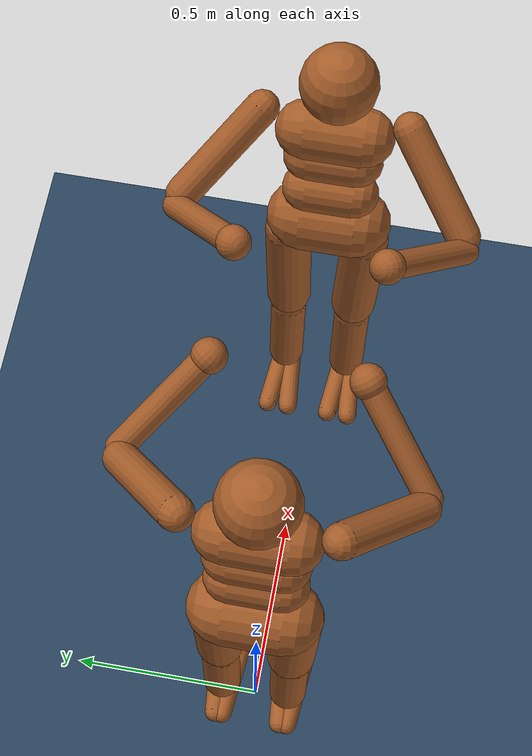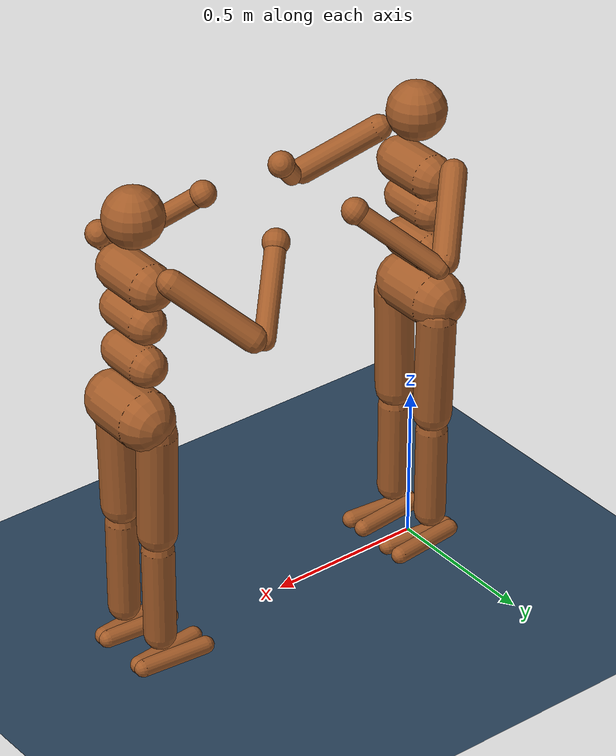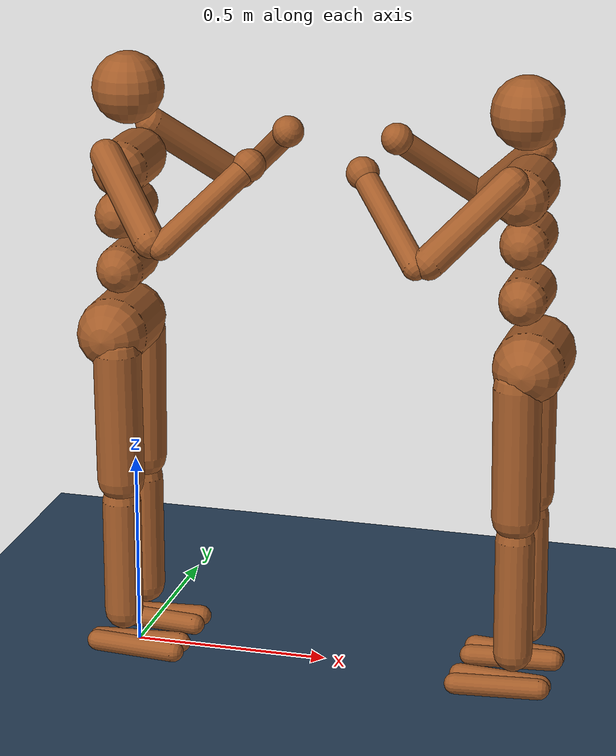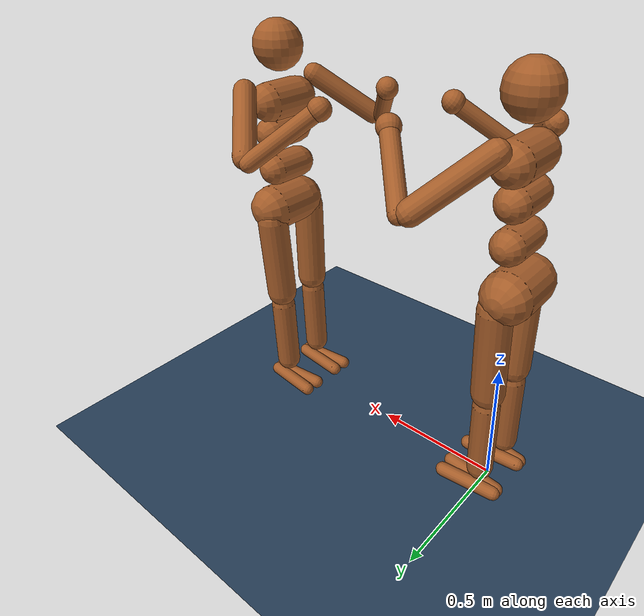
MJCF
<mujoco model="Humanoid">
  <option timestep="0.0050000000000000001"/>
  <visual>
    <global azimuth="120" elevation="-20" offwidth="2560" offheight="1440"/>
    <map force="0.10000000000000001" zfar="30"/>
    <rgba haze="0.14999999999999999 0.25 0.34999999999999998 1"/>
  </visual>
  <statistic center="0 0 0.69999999999999996"/>
  <default>
    <default class="/">
      <motor ctrllimited="true" ctrlrange="-1 1"/>
      <default class="body">
        <joint type="hinge" limited="true" solimplimit="0 0.98999999999999999 0.01" stiffness="1" armature="0.01" damping="0.20000000000000001"/>
        <geom type="capsule" condim="1" group="1" material="body" friction="0.69999999999999996" solref="0.014999999999999999 1" solimp="0.90000000000000002 0.98999999999999999 0.0030000000000000001"/>
        <default class="thigh">
          <geom size="0.059999999999999998"/>
        </default>
        <default class="shin">
          <geom size="0.049000000000000002" fromto="0 0 0 0 0 -0.29999999999999999"/>
        </default>
        <default class="foot">
          <geom size="0.027"/>
          <default class="foot1">
            <geom fromto="-0.070000000000000007 -0.01 0 0.14000000000000001 -0.029999999999999999 0"/>
          </default>
          <default class="foot2">
            <geom fromto="-0.070000000000000007 0.01 0 0.14000000000000001 0.029999999999999999 0"/>
          </default>
        </default>
        <default class="arm_upper">
          <geom size="0.040000000000000001"/>
        </default>
        <default class="arm_lower">
          <geom size="0.031"/>
        </default>
        <default class="hand">
          <geom type="sphere" size="0.040000000000000001"/>
        </default>
        <default class="joint_big">
          <joint stiffness="10" damping="5"/>
          <default class="hip_x">
            <joint range="-30 10"/>
          </default>
          <default class="hip_z">
            <joint range="-60 35"/>
          </default>
          <default class="hip_y">
            <joint axis="0 1 0" range="-150 20"/>
          </default>
          <default class="joint_big_stiff">
            <joint stiffness="20"/>
          </default>
        </default>
        <default class="knee">
          <joint pos="0 0 0.02" axis="0 -1 0" range="-160 2"/>
        </default>
        <default class="ankle">
          <joint range="-50 50"/>
          <default class="ankle_y">
            <joint pos="0 0 0.080000000000000002" axis="0 1 0" stiffness="6"/>
          </default>
          <default class="ankle_x">
            <joint pos="0 0 0.040000000000000001" stiffness="3"/>
          </default>
        </default>
        <default class="shoulder">
          <joint range="-85 60"/>
        </default>
        <default class="elbow">
          <joint stiffness="0" range="-100 50"/>
        </default>
      </default>
    </default>
    <default class="Humanoid/">
      <motor ctrllimited="true" ctrlrange="-1 1"/>
      <default class="Humanoid/body">
        <joint type="hinge" limited="true" solimplimit="0 0.98999999999999999 0.01" stiffness="1" armature="0.01" damping="0.20000000000000001"/>
        <geom type="capsule" condim="1" group="1" material="Humanoid/body" friction="0.69999999999999996" solref="0.014999999999999999 1" solimp="0.90000000000000002 0.98999999999999999 0.0030000000000000001"/>
        <default class="Humanoid/thigh">
          <geom size="0.059999999999999998"/>
        </default>
        <default class="Humanoid/shin">
          <geom size="0.049000000000000002" fromto="0 0 0 0 0 -0.29999999999999999"/>
        </default>
        <default class="Humanoid/foot">
          <geom size="0.027"/>
          <default class="Humanoid/foot1">
            <geom fromto="-0.070000000000000007 -0.01 0 0.14000000000000001 -0.029999999999999999 0"/>
          </default>
          <default class="Humanoid/foot2">
            <geom fromto="-0.070000000000000007 0.01 0 0.14000000000000001 0.029999999999999999 0"/>
          </default>
        </default>
        <default class="Humanoid/arm_upper">
          <geom size="0.040000000000000001"/>
        </default>
        <default class="Humanoid/arm_lower">
          <geom size="0.031"/>
        </default>
        <default class="Humanoid/hand">
          <geom type="sphere" size="0.040000000000000001"/>
        </default>
        <default class="Humanoid/joint_big">
          <joint stiffness="10" damping="5"/>
          <default class="Humanoid/hip_x">
            <joint range="-30 10"/>
          </default>
          <default class="Humanoid/hip_z">
            <joint range="-60 35"/>
          </default>
          <default class="Humanoid/hip_y">
            <joint axis="0 1 0" range="-150 20"/>
          </default>
          <default class="Humanoid/joint_big_stiff">
            <joint stiffness="20"/>
          </default>
        </default>
        <default class="Humanoid/knee">
          <joint pos="0 0 0.02" axis="0 -1 0" range="-160 2"/>
        </default>
        <default class="Humanoid/ankle">
          <joint range="-50 50"/>
          <default class="Humanoid/ankle_y">
            <joint pos="0 0 0.080000000000000002" axis="0 1 0" stiffness="6"/>
          </default>
          <default class="Humanoid/ankle_x">
            <joint pos="0 0 0.040000000000000001" stiffness="3"/>
          </default>
        </default>
        <default class="Humanoid/shoulder">
          <joint range="-85 60"/>
        </default>
        <default class="Humanoid/elbow">
          <joint stiffness="0" range="-100 50"/>
        </default>
      </default>
    </default>
  </default>
  <asset>
    <texture name="//unnamed_texture_0" type="skybox" builtin="gradient" rgb1="0.29999999999999999 0.5 0.69999999999999996" rgb2="0 0 0" width="32" height="512"/>
    <texture name="body" type="cube" builtin="flat" rgb1="0.80000000000000004 0.59999999999999998 0.40000000000000002" rgb2="0.80000000000000004 0.59999999999999998 0.40000000000000002" mark="cross" markrgb="1 1 1" width="128" height="128"/>
    <material name="body" class="/" texture="body" texuniform="true" rgba="0.80000000000000004 0.59999999999999998 0.40000000000000002 1"/>
    <texture name="grid" type="2d" builtin="checker" rgb1="0.10000000000000001 0.20000000000000001 0.29999999999999999" rgb2="0.20000000000000001 0.29999999999999999 0.40000000000000002" width="512" height="512"/>
    <material name="grid" class="/" texture="grid" texrepeat="1 1" texuniform="true" reflectance="0.20000000000000001"/>
    <texture name="Humanoid//unnamed_texture_0" type="skybox" builtin="gradient" rgb1="0.29999999999999999 0.5 0.69999999999999996" rgb2="0 0 0" width="32" height="512"/>
    <texture name="Humanoid/body" type="cube" builtin="flat" rgb1="0.80000000000000004 0.59999999999999998 0.40000000000000002" rgb2="0.80000000000000004 0.59999999999999998 0.40000000000000002" mark="cross" markrgb="1 1 1" width="128" height="128"/>
    <material name="Humanoid/body" class="Humanoid/" texture="Humanoid/body" texuniform="true" rgba="0.80000000000000004 0.59999999999999998 0.40000000000000002 1"/>
    <texture name="Humanoid/grid" type="2d" builtin="checker" rgb1="0.10000000000000001 0.20000000000000001 0.29999999999999999" rgb2="0.20000000000000001 0.29999999999999999 0.40000000000000002" width="512" height="512"/>
    <material name="Humanoid/grid" class="Humanoid/" texture="Humanoid/grid" texrepeat="1 1" texuniform="true" reflectance="0.20000000000000001"/>
  </asset>
  <worldbody>
    <geom name="floor" class="/" type="plane" condim="3" size="0 0 0.050000000000000003" material="grid"/>
    <light name="spotlight" class="/" mode="targetbodycom" target="torso" pos="0 -6 4" cutoff="30" diffuse="0.80000000000000004 0.80000000000000004 0.80000000000000004" specular="0.29999999999999999 0.29999999999999999 0.29999999999999999"/>
    <light name="top" class="/" mode="trackcom" pos="0 0 2"/>
    <body name="torso" childclass="body" pos="0 0 1.282">
      <camera name="back" mode="trackcom" pos="-3 0 1" xyaxes="0 -1 0 1 0 2"/>
      <camera name="side" mode="trackcom" pos="0 -3 1" xyaxes="1 0 0 0 1 2"/>
      <freejoint name="root"/>
      <geom name="torso" size="0.070000000000000007" fromto="0 -0.070000000000000007 0 0 0.070000000000000007 0"/>
      <geom name="waist_upper" size="0.059999999999999998" fromto="-0.01 -0.059999999999999998 -0.12 -0.01 0.059999999999999998 -0.12"/>
      <body name="head" pos="0 0 0.19">
        <geom name="head" type="sphere" size="0.089999999999999997"/>
        <camera name="egocentric" fovy="80" pos="0.089999999999999997 0 0" xyaxes="0 -1 0 0.10000000000000001 0 1"/>
      </body>
      <body name="waist_lower" pos="-0.01 0 -0.26000000000000001">
        <geom name="waist_lower" size="0.059999999999999998" fromto="0 -0.059999999999999998 0 0 0.059999999999999998 0"/>
        <joint name="abdomen_z" class="joint_big_stiff" pos="0 0 0.065000000000000002" axis="0 0 1" range="-45 45"/>
        <joint name="abdomen_y" class="joint_big" pos="0 0 0.065000000000000002" axis="0 1 0" range="-75 30"/>
        <body name="pelvis" pos="0 0 -0.16500000000000001">
          <joint name="abdomen_x" class="joint_big" pos="0 0 0.10000000000000001" axis="1 0 0" range="-35 35"/>
          <geom name="butt" size="0.089999999999999997" fromto="-0.02 -0.070000000000000007 0 -0.02 0.070000000000000007 0"/>
          <body name="thigh_right" pos="0 -0.10000000000000001 -0.040000000000000001">
            <joint name="hip_x_right" class="hip_x" axis="1 0 0"/>
            <joint name="hip_z_right" class="hip_z" axis="0 0 1"/>
            <joint name="hip_y_right" class="hip_y"/>
            <geom name="thigh_right" class="thigh" fromto="0 0 0 0 0.01 -0.34000000000000002"/>
            <body name="shin_right" pos="0 0.01 -0.40000000000000002">
              <joint name="knee_right" class="knee"/>
              <geom name="shin_right" class="shin"/>
              <body name="foot_right" pos="0 0 -0.39000000000000001">
                <joint name="ankle_y_right" class="ankle_y"/>
                <joint name="ankle_x_right" class="ankle_x" axis="1 0 0.5"/>
                <geom name="foot1_right" class="foot1"/>
                <geom name="foot2_right" class="foot2"/>
              </body>
            </body>
          </body>
          <body name="thigh_left" pos="0 0.10000000000000001 -0.040000000000000001">
            <joint name="hip_x_left" class="hip_x" axis="-1 0 0"/>
            <joint name="hip_z_left" class="hip_z" axis="0 0 -1"/>
            <joint name="hip_y_left" class="hip_y"/>
            <geom name="thigh_left" class="thigh" fromto="0 0 0 0 -0.01 -0.34000000000000002"/>
            <body name="shin_left" pos="0 -0.01 -0.40000000000000002">
              <joint name="knee_left" class="knee"/>
              <geom name="shin_left" class="shin" fromto="0 0 0 0 0 -0.29999999999999999"/>
              <body name="foot_left" pos="0 0 -0.39000000000000001">
                <joint name="ankle_y_left" class="ankle_y"/>
                <joint name="ankle_x_left" class="ankle_x" axis="-1 0 -0.5"/>
                <geom name="foot1_left" class="foot1"/>
                <geom name="foot2_left" class="foot2"/>
              </body>
            </body>
          </body>
        </body>
      </body>
      <body name="upper_arm_right" pos="0 -0.17000000000000001 0.059999999999999998">
        <joint name="shoulder1_right" class="shoulder" axis="2 1 1"/>
        <joint name="shoulder2_right" class="shoulder" axis="0 -1 1"/>
        <geom name="upper_arm_right" class="arm_upper" fromto="0 0 0 0.16 -0.16 -0.16"/>
        <body name="lower_arm_right" pos="0.17999999999999999 -0.17999999999999999 -0.17999999999999999">
          <joint name="elbow_right" class="elbow" axis="0 -1 1"/>
          <geom name="lower_arm_right" class="arm_lower" fromto="0.01 0.01 0.01 0.17000000000000001 0.17000000000000001 0.17000000000000001"/>
          <body name="hand_right" pos="0.17999999999999999 0.17999999999999999 0.17999999999999999">
            <geom name="hand_right" class="hand" zaxis="1 1 1"/>
          </body>
        </body>
      </body>
      <body name="upper_arm_left" pos="0 0.17000000000000001 0.059999999999999998">
        <joint name="shoulder1_left" class="shoulder" axis="-2 1 -1"/>
        <joint name="shoulder2_left" class="shoulder" axis="0 -1 -1"/>
        <geom name="upper_arm_left" class="arm_upper" fromto="0 0 0 0.16 0.16 -0.16"/>
        <body name="lower_arm_left" pos="0.17999999999999999 0.17999999999999999 -0.17999999999999999">
          <joint name="elbow_left" class="elbow" axis="0 -1 -1"/>
          <geom name="lower_arm_left" class="arm_lower" fromto="0.01 -0.01 0.01 0.17000000000000001 -0.17000000000000001 0.17000000000000001"/>
          <body name="hand_left" pos="0.17999999999999999 -0.17999999999999999 0.17999999999999999">
            <geom name="hand_left" class="hand" zaxis="1 -1 1"/>
          </body>
        </body>
      </body>
    </body>
      <body name="Humanoid/torso" childclass="Humanoid/body" pos="1 0 1.282" axisangle="0 0 1 180">
        <camera name="Humanoid/back" mode="trackcom" pos="-3 0 1" xyaxes="0 -1 0 1 0 2"/>
        <camera name="Humanoid/side" mode="trackcom" pos="0 -3 1" xyaxes="1 0 0 0 1 2"/>
        <freejoint name="Humanoid/root"/>
        <geom name="Humanoid/torso" size="0.070000000000000007" fromto="0 -0.070000000000000007 0 0 0.070000000000000007 0"/>
        <geom name="Humanoid/waist_upper" size="0.059999999999999998" fromto="-0.01 -0.059999999999999998 -0.12 -0.01 0.059999999999999998 -0.12"/>
        <body name="Humanoid/head" pos="0 0 0.19">
          <geom name="Humanoid/head" type="sphere" size="0.089999999999999997"/>
          <camera name="Humanoid/egocentric" fovy="80" pos="0.089999999999999997 0 0" xyaxes="0 -1 0 0.10000000000000001 0 1"/>
        </body>
        <body name="Humanoid/waist_lower" pos="-0.01 0 -0.26000000000000001">
          <geom name="Humanoid/waist_lower" size="0.059999999999999998" fromto="0 -0.059999999999999998 0 0 0.059999999999999998 0"/>
          <joint name="Humanoid/abdomen_z" class="Humanoid/joint_big_stiff" pos="0 0 0.065000000000000002" axis="0 0 1" range="-45 45"/>
          <joint name="Humanoid/abdomen_y" class="Humanoid/joint_big" pos="0 0 0.065000000000000002" axis="0 1 0" range="-75 30"/>
          <body name="Humanoid/pelvis" pos="0 0 -0.16500000000000001">
            <joint name="Humanoid/abdomen_x" class="Humanoid/joint_big" pos="0 0 0.10000000000000001" axis="1 0 0" range="-35 35"/>
            <geom name="Humanoid/butt" size="0.089999999999999997" fromto="-0.02 -0.070000000000000007 0 -0.02 0.070000000000000007 0"/>
            <body name="Humanoid/thigh_right" pos="0 -0.10000000000000001 -0.040000000000000001">
              <joint name="Humanoid/hip_x_right" class="Humanoid/hip_x" axis="1 0 0"/>
              <joint name="Humanoid/hip_z_right" class="Humanoid/hip_z" axis="0 0 1"/>
              <joint name="Humanoid/hip_y_right" class="Humanoid/hip_y"/>
              <geom name="Humanoid/thigh_right" class="Humanoid/thigh" fromto="0 0 0 0 0.01 -0.34000000000000002"/>
              <body name="Humanoid/shin_right" pos="0 0.01 -0.40000000000000002">
                <joint name="Humanoid/knee_right" class="Humanoid/knee"/>
                <geom name="Humanoid/shin_right" class="Humanoid/shin"/>
                <body name="Humanoid/foot_right" pos="0 0 -0.39000000000000001">
                  <joint name="Humanoid/ankle_y_right" class="Humanoid/ankle_y"/>
                  <joint name="Humanoid/ankle_x_right" class="Humanoid/ankle_x" axis="1 0 0.5"/>
                  <geom name="Humanoid/foot1_right" class="Humanoid/foot1"/>
                  <geom name="Humanoid/foot2_right" class="Humanoid/foot2"/>
                </body>
              </body>
            </body>
            <body name="Humanoid/thigh_left" pos="0 0.10000000000000001 -0.040000000000000001">
              <joint name="Humanoid/hip_x_left" class="Humanoid/hip_x" axis="-1 0 0"/>
              <joint name="Humanoid/hip_z_left" class="Humanoid/hip_z" axis="0 0 -1"/>
              <joint name="Humanoid/hip_y_left" class="Humanoid/hip_y"/>
              <geom name="Humanoid/thigh_left" class="Humanoid/thigh" fromto="0 0 0 0 -0.01 -0.34000000000000002"/>
              <body name="Humanoid/shin_left" pos="0 -0.01 -0.40000000000000002">
                <joint name="Humanoid/knee_left" class="Humanoid/knee"/>
                <geom name="Humanoid/shin_left" class="Humanoid/shin" fromto="0 0 0 0 0 -0.29999999999999999"/>
                <body name="Humanoid/foot_left" pos="0 0 -0.39000000000000001">
                  <joint name="Humanoid/ankle_y_left" class="Humanoid/ankle_y"/>
                  <joint name="Humanoid/ankle_x_left" class="Humanoid/ankle_x" axis="-1 0 -0.5"/>
                  <geom name="Humanoid/foot1_left" class="Humanoid/foot1"/>
                  <geom name="Humanoid/foot2_left" class="Humanoid/foot2"/>
                </body>
              </body>
            </body>
          </body>
        </body>
        <body name="Humanoid/upper_arm_right" pos="0 -0.17000000000000001 0.059999999999999998">
          <joint name="Humanoid/shoulder1_right" class="Humanoid/shoulder" axis="2 1 1"/>
          <joint name="Humanoid/shoulder2_right" class="Humanoid/shoulder" axis="0 -1 1"/>
          <geom name="Humanoid/upper_arm_right" class="Humanoid/arm_upper" fromto="0 0 0 0.16 -0.16 -0.16"/>
          <body name="Humanoid/lower_arm_right" pos="0.17999999999999999 -0.17999999999999999 -0.17999999999999999">
            <joint name="Humanoid/elbow_right" class="Humanoid/elbow" axis="0 -1 1"/>
            <geom name="Humanoid/lower_arm_right" class="Humanoid/arm_lower" fromto="0.01 0.01 0.01 0.17000000000000001 0.17000000000000001 0.17000000000000001"/>
            <body name="Humanoid/hand_right" pos="0.17999999999999999 0.17999999999999999 0.17999999999999999">
              <geom name="Humanoid/hand_right" class="Humanoid/hand" zaxis="1 1 1"/>
            </body>
          </body>
        </body>
        <body name="Humanoid/upper_arm_left" pos="0 0.17000000000000001 0.059999999999999998">
          <joint name="Humanoid/shoulder1_left" class="Humanoid/shoulder" axis="-2 1 -1"/>
          <joint name="Humanoid/shoulder2_left" class="Humanoid/shoulder" axis="0 -1 -1"/>
          <geom name="Humanoid/upper_arm_left" class="Humanoid/arm_upper" fromto="0 0 0 0.16 0.16 -0.16"/>
          <body name="Humanoid/lower_arm_left" pos="0.17999999999999999 0.17999999999999999 -0.17999999999999999">
            <joint name="Humanoid/elbow_left" class="Humanoid/elbow" axis="0 -1 -1"/>
            <geom name="Humanoid/lower_arm_left" class="Humanoid/arm_lower" fromto="0.01 -0.01 0.01 0.17000000000000001 -0.17000000000000001 0.17000000000000001"/>
            <body name="Humanoid/hand_left" pos="0.17999999999999999 -0.17999999999999999 0.17999999999999999">
              <geom name="Humanoid/hand_left" class="Humanoid/hand" zaxis="1 -1 1"/>
            </body>
          </body>
        </body>
      </body>
  </worldbody>
  <contact>
    <exclude name="//unnamed_contact_0" body1="waist_lower" body2="thigh_right"/>
    <exclude name="//unnamed_contact_1" body1="waist_lower" body2="thigh_left"/>
    <exclude name="Humanoid//unnamed_contact_0" body1="Humanoid/waist_lower" body2="Humanoid/thigh_right"/>
    <exclude name="Humanoid//unnamed_contact_1" body1="Humanoid/waist_lower" body2="Humanoid/thigh_left"/>
  </contact>
  <tendon>
    <fixed name="hamstring_right" class="/" limited="true" range="-0.29999999999999999 2">
      <joint joint="hip_y_right" coef="0.5"/>
      <joint joint="knee_right" coef="-0.5"/>
    </fixed>
    <fixed name="hamstring_left" class="/" limited="true" range="-0.29999999999999999 2">
      <joint joint="hip_y_left" coef="0.5"/>
      <joint joint="knee_left" coef="-0.5"/>
    </fixed>
    <fixed name="Humanoid/hamstring_right" class="Humanoid/" limited="true" range="-0.29999999999999999 2">
      <joint joint="Humanoid/hip_y_right" coef="0.5"/>
      <joint joint="Humanoid/knee_right" coef="-0.5"/>
    </fixed>
    <fixed name="Humanoid/hamstring_left" class="Humanoid/" limited="true" range="-0.29999999999999999 2">
      <joint joint="Humanoid/hip_y_left" coef="0.5"/>
      <joint joint="Humanoid/knee_left" coef="-0.5"/>
    </fixed>
  </tendon>
  <actuator>
    <motor name="abdomen_z" class="/" gear="40" joint="abdomen_z"/>
    <motor name="abdomen_y" class="/" gear="40" joint="abdomen_y"/>
    <motor name="abdomen_x" class="/" gear="40" joint="abdomen_x"/>
    <motor name="hip_x_right" class="/" gear="40" joint="hip_x_right"/>
    <motor name="hip_z_right" class="/" gear="40" joint="hip_z_right"/>
    <motor name="hip_y_right" class="/" gear="120" joint="hip_y_right"/>
    <motor name="knee_right" class="/" gear="80" joint="knee_right"/>
    <motor name="ankle_y_right" class="/" gear="20" joint="ankle_y_right"/>
    <motor name="ankle_x_right" class="/" gear="20" joint="ankle_x_right"/>
    <motor name="hip_x_left" class="/" gear="40" joint="hip_x_left"/>
    <motor name="hip_z_left" class="/" gear="40" joint="hip_z_left"/>
    <motor name="hip_y_left" class="/" gear="120" joint="hip_y_left"/>
    <motor name="knee_left" class="/" gear="80" joint="knee_left"/>
    <motor name="ankle_y_left" class="/" gear="20" joint="ankle_y_left"/>
    <motor name="ankle_x_left" class="/" gear="20" joint="ankle_x_left"/>
    <motor name="shoulder1_right" class="/" gear="20" joint="shoulder1_right"/>
    <motor name="shoulder2_right" class="/" gear="20" joint="shoulder2_right"/>
    <motor name="elbow_right" class="/" gear="40" joint="elbow_right"/>
    <motor name="shoulder1_left" class="/" gear="20" joint="shoulder1_left"/>
    <motor name="shoulder2_left" class="/" gear="20" joint="shoulder2_left"/>
    <motor name="elbow_left" class="/" gear="40" joint="elbow_left"/>
    <motor name="Humanoid/abdomen_z" class="Humanoid/" gear="40" joint="Humanoid/abdomen_z"/>
    <motor name="Humanoid/abdomen_y" class="Humanoid/" gear="40" joint="Humanoid/abdomen_y"/>
    <motor name="Humanoid/abdomen_x" class="Humanoid/" gear="40" joint="Humanoid/abdomen_x"/>
    <motor name="Humanoid/hip_x_right" class="Humanoid/" gear="40" joint="Humanoid/hip_x_right"/>
    <motor name="Humanoid/hip_z_right" class="Humanoid/" gear="40" joint="Humanoid/hip_z_right"/>
    <motor name="Humanoid/hip_y_right" class="Humanoid/" gear="120" joint="Humanoid/hip_y_right"/>
    <motor name="Humanoid/knee_right" class="Humanoid/" gear="80" joint="Humanoid/knee_right"/>
    <motor name="Humanoid/ankle_y_right" class="Humanoid/" gear="20" joint="Humanoid/ankle_y_right"/>
    <motor name="Humanoid/ankle_x_right" class="Humanoid/" gear="20" joint="Humanoid/ankle_x_right"/>
    <motor name="Humanoid/hip_x_left" class="Humanoid/" gear="40" joint="Humanoid/hip_x_left"/>
    <motor name="Humanoid/hip_z_left" class="Humanoid/" gear="40" joint="Humanoid/hip_z_left"/>
    <motor name="Humanoid/hip_y_left" class="Humanoid/" gear="120" joint="Humanoid/hip_y_left"/>
    <motor name="Humanoid/knee_left" class="Humanoid/" gear="80" joint="Humanoid/knee_left"/>
    <motor name="Humanoid/ankle_y_left" class="Humanoid/" gear="20" joint="Humanoid/ankle_y_left"/>
    <motor name="Humanoid/ankle_x_left" class="Humanoid/" gear="20" joint="Humanoid/ankle_x_left"/>
    <motor name="Humanoid/shoulder1_right" class="Humanoid/" gear="20" joint="Humanoid/shoulder1_right"/>
    <motor name="Humanoid/shoulder2_right" class="Humanoid/" gear="20" joint="Humanoid/shoulder2_right"/>
    <motor name="Humanoid/elbow_right" class="Humanoid/" gear="40" joint="Humanoid/elbow_right"/>
    <motor name="Humanoid/shoulder1_left" class="Humanoid/" gear="20" joint="Humanoid/shoulder1_left"/>
    <motor name="Humanoid/shoulder2_left" class="Humanoid/" gear="20" joint="Humanoid/shoulder2_left"/>
    <motor name="Humanoid/elbow_left" class="Humanoid/" gear="40" joint="Humanoid/elbow_left"/>
  </actuator>
</mujoco>
